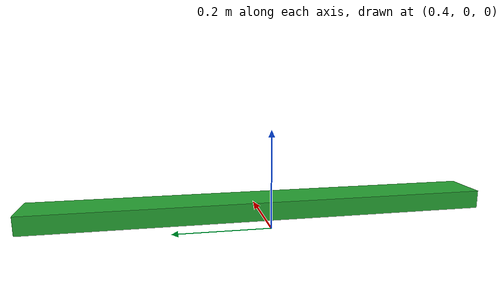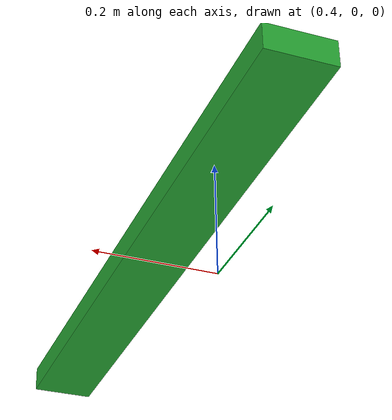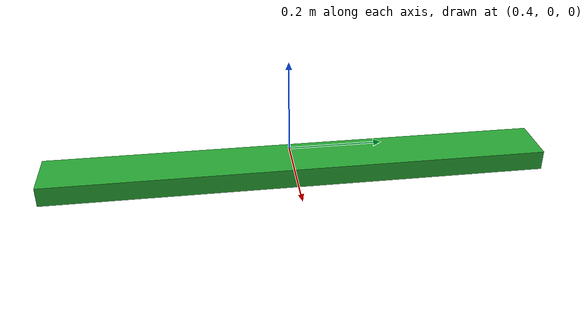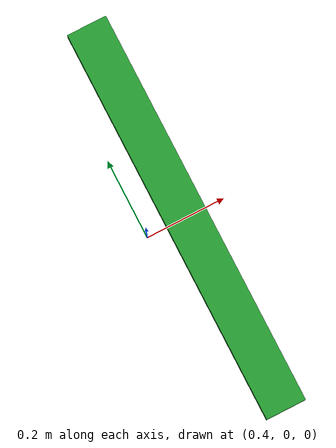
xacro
<?xml version="1.0"?>
<robot xmlns:xacro="http://www.ros.org/wiki/xacro" name="base">
    <link name="world">
    </link>

    <joint name="object_base_joint" type="fixed">
        <parent link="world"/>
        <child link="object_link"/>
        <axis xyz="0 0 1" />
        <origin xyz="0.5 0 0.02" rpy="0 0 0"/>
    </joint>

    <link name="object_link">
        <inertial>
            <origin xyz="0 0 0" />
            <mass value="1.0" />
            <inertia ixx="1.0" ixy="0.0" ixz="0.0" iyy="100.0" iyz="0.0" izz="1.0" />
        </inertial>
        <visual>
            <origin xyz="0 0 0"/>
            <geometry>
                <box size="0.1 1 0.04" />
            </geometry>
        </visual>
    </link>

    <gazebo reference="object_link">
        <material>Gazebo/Green</material>
    </gazebo>
</robot>
